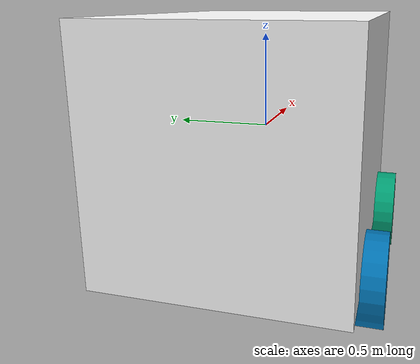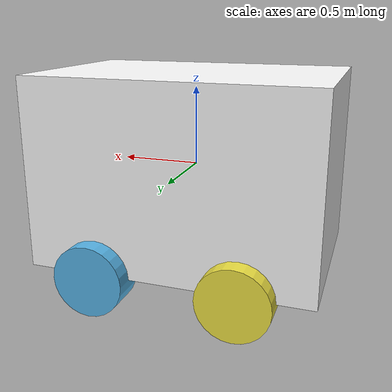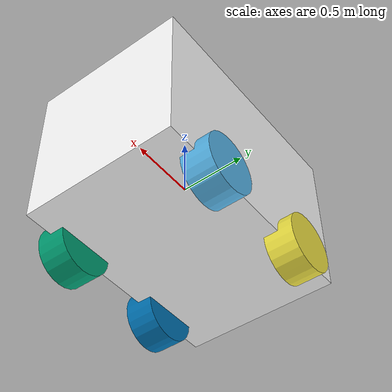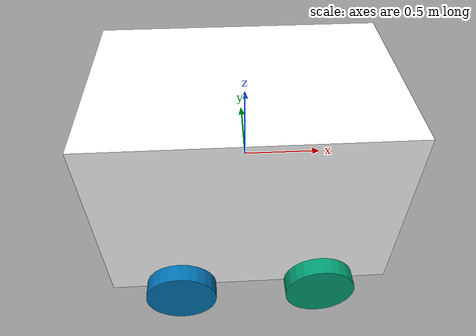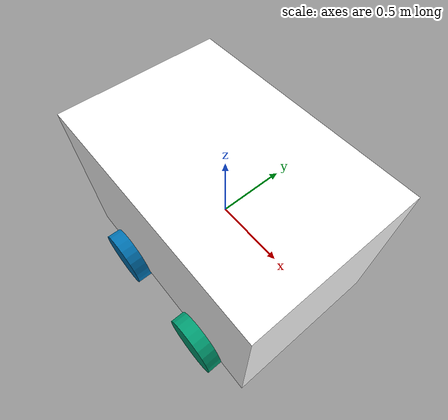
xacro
<?xml version="1.0" encoding="UTF-8"?>
<robot xmlns:xacro="http://www.ros.org/wiki/xacro" name="robot5">

    <xacro:include filename="$(find rover_desc)/urdf/inertial_macros.xacro"/>

    <xacro:property name="robot_namespace" value="robot5" />

    <gazebo>
        <plugin name="gazebo_control" filename="libgazebo_ros_diff_drive.so">

            <num_wheel_pairs>2</num_wheel_pairs>

            <ros>
                <namespace>${robot_namespace}</namespace>
            </ros>

            <left_joint>lb_wheel_joint</left_joint>
            <right_joint>rb_wheel_joint</right_joint>

            <left_joint>lf_wheel_joint</left_joint>
            <right_joint>rf_wheel_joint</right_joint>

            <wheel_separation>1.2</wheel_separation>
            <wheel_diameter>0.45</wheel_diameter>

            <command_topic>cmd_vel</command_topic>
            <update_rate>50</update_rate>

            <max_wheel_torque>100</max_wheel_torque>
            <max_wheel_acceleration>5.0</max_wheel_acceleration>

            <odometry_frame>odom</odometry_frame>
            <robot_base_frame>base_link</robot_base_frame>

            <publish_odom>true</publish_odom>
            <publish_odom_tf>true</publish_odom_tf>
            <publish_wheel_tf>true</publish_wheel_tf>

        </plugin>
    </gazebo>

    <gazebo reference="lb_wheel">
        <mu1>0.5</mu1>
        <mu2>0.5</mu2>
    </gazebo>

    <gazebo reference="lf_wheel">
        <mu1>0.5</mu1>
        <mu2>0.5</mu2>
    </gazebo>

    <gazebo reference="rb_wheel">
        <mu1>0.5</mu1>
        <mu2>0.5</mu2>
    </gazebo>

    <gazebo reference="rf_wheel">
        <mu1>0.5</mu1>
        <mu2>0.5</mu2>
    </gazebo>

    <material name="white">
        <color rgba="1 1 1 1" />
    </material>

    <material name="orange">
        <color rgba="1 0.3 0.1 1"/>
    </material>

    <material name="blue">
        <color rgba="0.2 0.2 1 1"/>
    </material>

    <material name="black">
        <color rgba="0 0 0 1"/>
    </material>

    <link name="base_link">
        <visual>
            <origin xyz="0 0 0"/>
            <geometry>
                <box size="1.8 1.2 1.2"/>
            </geometry>
            <material name="white"/>
        </visual>
        <collision>
            <origin xyz="0 0 0"/>
            <geometry>
                <box size="1.8 1.2 1.2"/>
            </geometry>
        </collision>
        <xacro:inertial_box mass="5.0" x="1.8" y="1.2" z="1.2">
            <origin xyz="0 0 0" rpy="0 0 0"/>
        </xacro:inertial_box>
    </link>

    <link name="lf_wheel">
        <visual>
            <origin xyz="0 0 0"/>
            <geometry>
                <cylinder radius="0.225" length="0.22"/>
            </geometry>
        </visual>
        <collision>
            <origin xyz="0 0 0"/>
            <geometry>
                <cylinder radius="0.225" length="0.22"/>
            </geometry>
        </collision>
        <xacro:inertial_cylinder mass="0.25" length="0.22" radius="0.225">
            <origin xyz="0 0 0" rpy="0 0 0"/>
        </xacro:inertial_cylinder>
    </link>

    <joint name="lf_wheel_joint" type="continuous">
        <parent link="base_link" />
        <child link="lf_wheel" />
        <origin xyz="0.45 0.6 -0.6" rpy="-${pi/2} 0 0"/>
        <axis xyz="0 0 1"/>
    </joint>

    <link name="rf_wheel">
        <visual>
            <origin xyz="0 0 0"/>
            <geometry>
                <cylinder radius="0.225" length="0.22"/>
            </geometry>
        </visual>
        <collision>
            <origin xyz="0 0 0"/>
            <geometry>
                <cylinder radius="0.225" length="0.22"/>
            </geometry>
        </collision>
        <xacro:inertial_cylinder mass="0.25" length="0.22" radius="0.225">
            <origin xyz="0 0 0" rpy="0 0 0"/>
        </xacro:inertial_cylinder>
    </link>

    <joint name="rf_wheel_joint" type="continuous">
        <parent link="base_link" />
        <child link="rf_wheel" />
        <origin xyz="0.45 -0.6 -0.6" rpy="${pi/2} 0 0"/>
        <axis xyz="0 0 -1"/>
    </joint>

    <link name="lb_wheel">
        <visual>
            <origin xyz="0 0 0"/>
            <geometry>
                <cylinder radius="0.225" length="0.22"/>
            </geometry>
        </visual>
        <collision>
            <origin xyz="0 0 0"/>
            <geometry>
                <cylinder radius="0.225" length="0.22"/>
            </geometry>
        </collision>
        <xacro:inertial_cylinder mass="0.25" length="0.22" radius="0.225">
            <origin xyz="0 0 0" rpy="0 0 0"/>
        </xacro:inertial_cylinder>
    </link>

    <joint name="lb_wheel_joint" type="continuous">
        <parent link="base_link" />
        <child link="lb_wheel" />
        <origin xyz="-0.45 0.6 -0.6" rpy="-${pi/2} 0 0"/>
        <axis xyz="0 0 1"/>
    </joint>

    <link name="rb_wheel">
        <visual>
            <origin xyz="0 0 0"/>
            <geometry>
                <cylinder radius="0.225" length="0.22"/>
            </geometry>
        </visual>
        <collision>
            <origin xyz="0 0 0"/>
            <geometry>
                <cylinder radius="0.225" length="0.22"/>
            </geometry>
        </collision>
        <xacro:inertial_cylinder mass="0.25" length="0.22" radius="0.225">
            <origin xyz="0 0 0" rpy="0 0 0"/>
        </xacro:inertial_cylinder>
    </link>

    <joint name="rb_wheel_joint" type="continuous">
        <parent link="base_link" />
        <child link="rb_wheel" />
        <origin xyz="-0.45 -0.6 -0.6" rpy="${pi/2} 0 0"/>
        <axis xyz="0 0 -1"/>
    </joint>

</robot>
